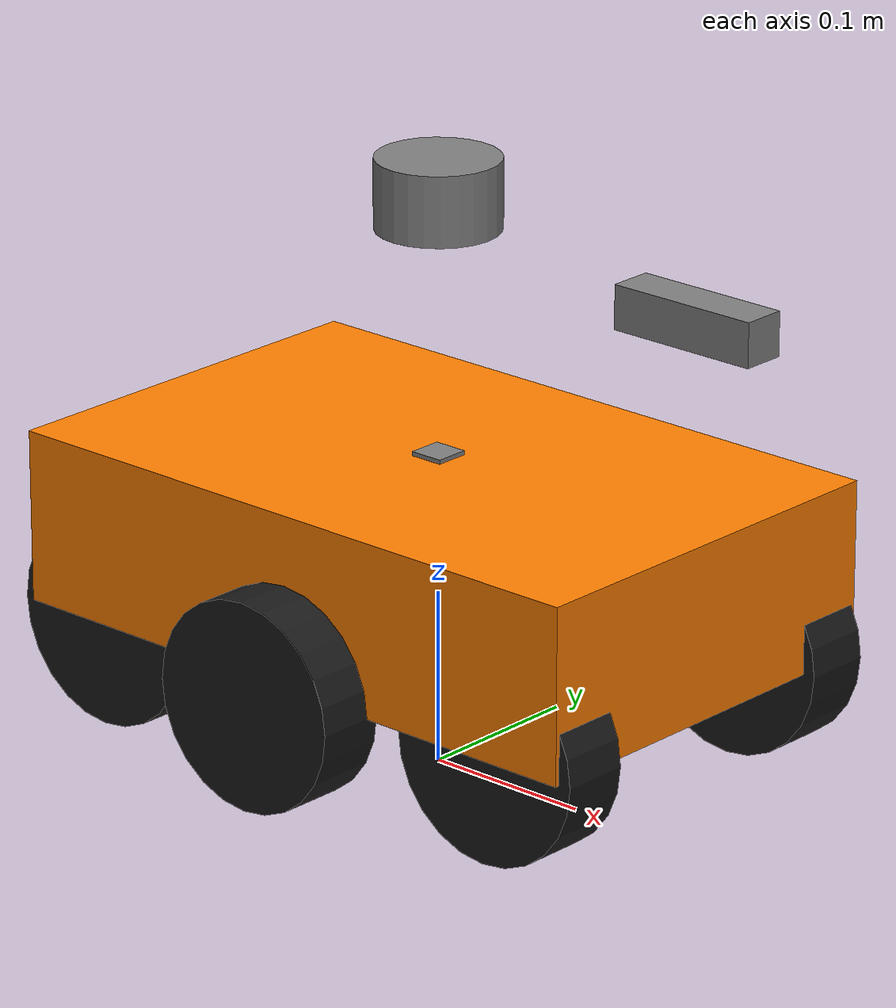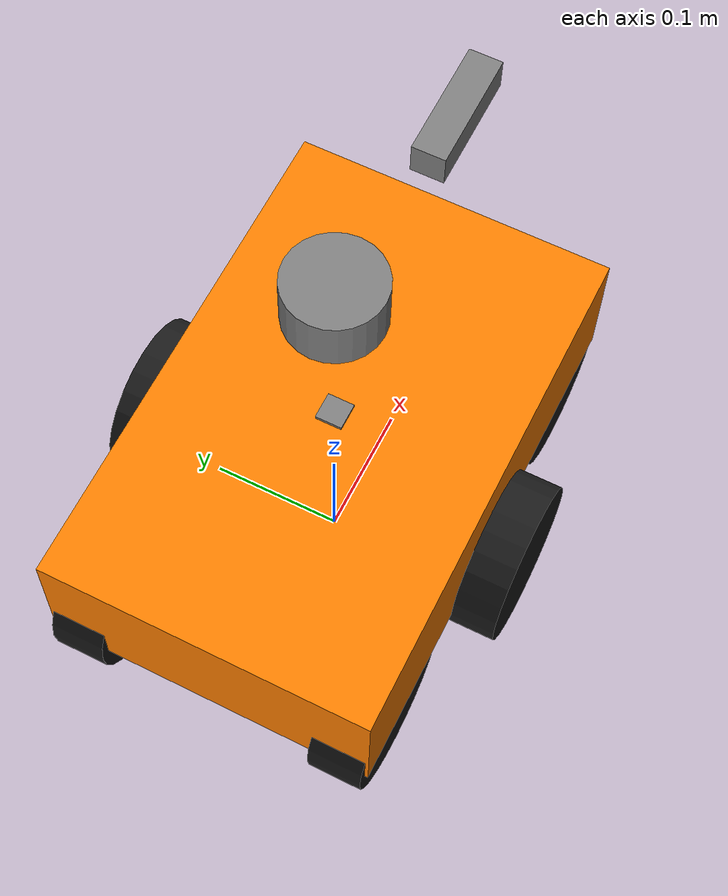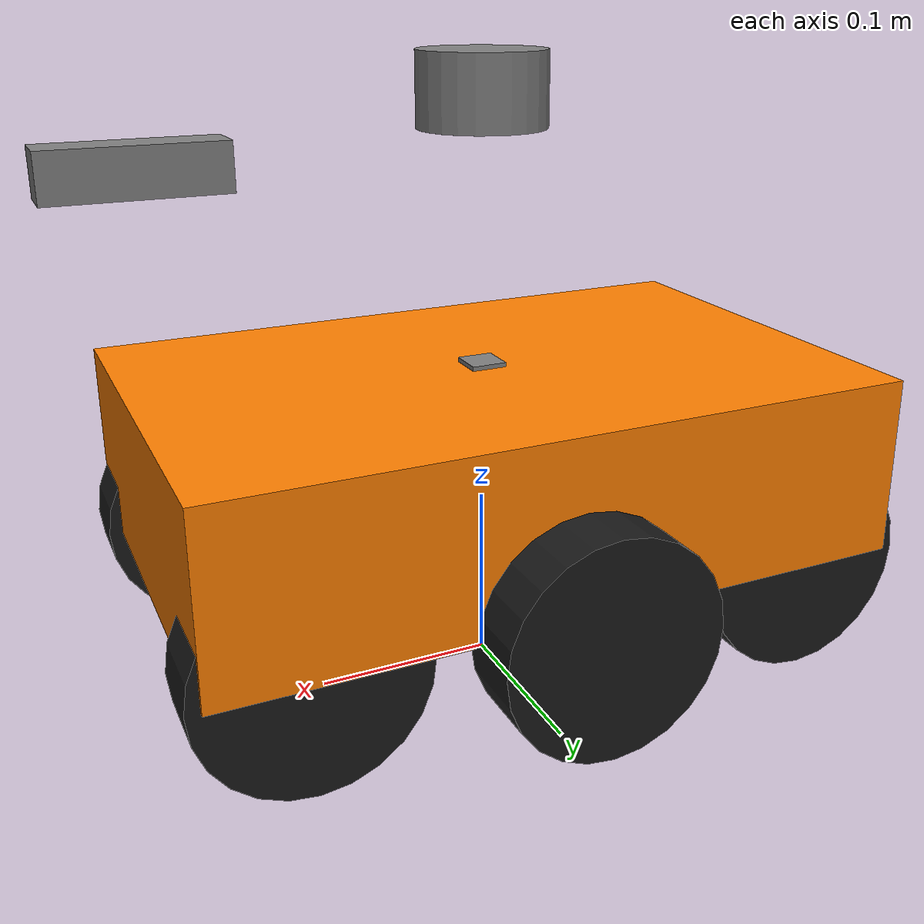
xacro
<?xml version="1.0"?>
<robot xmlns:xacro="http://www.ros.org/wiki/xacro" name="sawppy">

  <!-- ====================== PROPERTIES ====================== -->

  <!-- Chassis dimensions -->
  <xacro:property name="body_length" value="0.385"/>
  <xacro:property name="body_width" value="0.245"/>
  <xacro:property name="body_height" value="0.10"/>

  <!-- Wheel parameters (from wheel_parameter.h) -->
  <xacro:property name="wheelbase_front" value="0.14"/>
  <xacro:property name="wheelbase_back" value="0.14"/>
  <xacro:property name="track_front" value="0.20"/>
  <xacro:property name="track_mid" value="0.27"/>
  <xacro:property name="track_back" value="0.20"/>

  <!-- Wheel dimensions -->
  <xacro:property name="wheel_radius" value="0.060"/>
  <xacro:property name="wheel_width" value="0.040"/>

  <!-- Ground clearance -->
  <xacro:property name="ground_clearance" value="0.08"/>

  <!-- Sensor positions -->
  <xacro:property name="lidar_height" value="0.15"/>
  <xacro:property name="camera_height" value="0.12"/>
  <xacro:property name="camera_forward" value="0.18"/>

  <!-- Colors -->
  <material name="orange">
    <color rgba="1.0 0.5 0.0 1.0"/>
  </material>
  <material name="black">
    <color rgba="0.1 0.1 0.1 1.0"/>
  </material>
  <material name="grey">
    <color rgba="0.5 0.5 0.5 1.0"/>
  </material>
  <material name="silver">
    <color rgba="0.7 0.7 0.7 1.0"/>
  </material>

  <!-- ====================== MACROS ====================== -->

  <!-- Wheel macro -->
  <xacro:macro name="wheel" params="name x y z">
    <link name="${name}_wheel">
      <visual>
        <geometry>
          <cylinder radius="${wheel_radius}" length="${wheel_width}"/>
        </geometry>
        <origin xyz="0 0 0" rpy="${pi/2} 0 0"/>
        <material name="black"/>
      </visual>
      <collision>
        <geometry>
          <cylinder radius="${wheel_radius}" length="${wheel_width}"/>
        </geometry>
        <origin xyz="0 0 0" rpy="${pi/2} 0 0"/>
      </collision>
      <inertial>
        <mass value="0.2"/>
        <inertia ixx="0.0002" ixy="0" ixz="0" iyy="0.0004" iyz="0" izz="0.0002"/>
      </inertial>
    </link>

    <joint name="${name}_wheel_joint" type="continuous">
      <parent link="${name}_steer"/>
      <child link="${name}_wheel"/>
      <origin xyz="0 0 0" rpy="0 0 0"/>
      <axis xyz="0 1 0"/>
      <limit effort="5" velocity="10"/>
    </joint>
  </xacro:macro>

  <!-- Steering knuckle macro (for corner wheels) -->
  <xacro:macro name="steer_knuckle" params="name x y z">
    <link name="${name}_steer">
      <visual>
        <geometry>
          <box size="0.03 0.03 0.04"/>
        </geometry>
        <material name="silver"/>
      </visual>
      <collision>
        <geometry>
          <box size="0.03 0.03 0.04"/>
        </geometry>
      </collision>
      <inertial>
        <mass value="0.05"/>
        <inertia ixx="0.00001" ixy="0" ixz="0" iyy="0.00001" iyz="0" izz="0.00001"/>
      </inertial>
    </link>

    <joint name="${name}_steer_joint" type="revolute">
      <parent link="base_link"/>
      <child link="${name}_steer"/>
      <origin xyz="${x} ${y} ${z}" rpy="0 0 0"/>
      <axis xyz="0 0 1"/>
      <limit lower="${-pi/3}" upper="${pi/3}" effort="5" velocity="2"/>
    </joint>
  </xacro:macro>

  <!-- Fixed knuckle macro (for mid wheels) -->
  <xacro:macro name="fixed_knuckle" params="name x y z">
    <link name="${name}_steer">
      <visual>
        <geometry>
          <box size="0.03 0.03 0.04"/>
        </geometry>
        <material name="silver"/>
      </visual>
      <inertial>
        <mass value="0.05"/>
        <inertia ixx="0.00001" ixy="0" ixz="0" iyy="0.00001" iyz="0" izz="0.00001"/>
      </inertial>
    </link>

    <joint name="${name}_steer_joint" type="fixed">
      <parent link="base_link"/>
      <child link="${name}_steer"/>
      <origin xyz="${x} ${y} ${z}" rpy="0 0 0"/>
    </joint>
  </xacro:macro>

  <!-- ====================== LINKS ====================== -->

  <!-- Base footprint (ground projection) -->
  <link name="base_footprint"/>

  <!-- Base link (main chassis) -->
  <link name="base_link">
    <visual>
      <geometry>
        <box size="${body_length} ${body_width} ${body_height}"/>
      </geometry>
      <origin xyz="0 0 0"/>
      <material name="orange"/>
    </visual>
    <collision>
      <geometry>
        <box size="${body_length} ${body_width} ${body_height}"/>
      </geometry>
      <origin xyz="0 0 0"/>
    </collision>
    <inertial>
      <mass value="3.0"/>
      <inertia ixx="0.02" ixy="0" ixz="0" iyy="0.04" iyz="0" izz="0.05"/>
    </inertial>
  </link>

  <joint name="base_footprint_joint" type="fixed">
    <parent link="base_footprint"/>
    <child link="base_link"/>
    <origin xyz="0 0 ${ground_clearance + body_height/2}" rpy="0 0 0"/>
  </joint>

  <!-- ====================== WHEELS ====================== -->

  <!-- Front Left -->
  <xacro:steer_knuckle name="front_left"
    x="${wheelbase_front}"
    y="${track_front/2}"
    z="${-body_height/2}"/>
  <xacro:wheel name="front_left"
    x="${wheelbase_front}"
    y="${track_front/2}"
    z="${-body_height/2}"/>

  <!-- Front Right -->
  <xacro:steer_knuckle name="front_right"
    x="${wheelbase_front}"
    y="${-track_front/2}"
    z="${-body_height/2}"/>
  <xacro:wheel name="front_right"
    x="${wheelbase_front}"
    y="${-track_front/2}"
    z="${-body_height/2}"/>

  <!-- Mid Left (fixed steering) -->
  <xacro:fixed_knuckle name="mid_left"
    x="0"
    y="${track_mid/2}"
    z="${-body_height/2}"/>
  <xacro:wheel name="mid_left"
    x="0"
    y="${track_mid/2}"
    z="${-body_height/2}"/>

  <!-- Mid Right (fixed steering) -->
  <xacro:fixed_knuckle name="mid_right"
    x="0"
    y="${-track_mid/2}"
    z="${-body_height/2}"/>
  <xacro:wheel name="mid_right"
    x="0"
    y="${-track_mid/2}"
    z="${-body_height/2}"/>

  <!-- Rear Left -->
  <xacro:steer_knuckle name="rear_left"
    x="${-wheelbase_back}"
    y="${track_back/2}"
    z="${-body_height/2}"/>
  <xacro:wheel name="rear_left"
    x="${-wheelbase_back}"
    y="${track_back/2}"
    z="${-body_height/2}"/>

  <!-- Rear Right -->
  <xacro:steer_knuckle name="rear_right"
    x="${-wheelbase_back}"
    y="${-track_back/2}"
    z="${-body_height/2}"/>
  <xacro:wheel name="rear_right"
    x="${-wheelbase_back}"
    y="${-track_back/2}"
    z="${-body_height/2}"/>

  <!-- ====================== SENSORS ====================== -->

  <!-- Lidar mount -->
  <link name="lidar_link">
    <visual>
      <geometry>
        <cylinder radius="0.035" length="0.04"/>
      </geometry>
      <material name="grey"/>
    </visual>
    <collision>
      <geometry>
        <cylinder radius="0.035" length="0.04"/>
      </geometry>
    </collision>
    <inertial>
      <mass value="0.2"/>
      <inertia ixx="0.0001" ixy="0" ixz="0" iyy="0.0001" iyz="0" izz="0.0001"/>
    </inertial>
  </link>

  <joint name="lidar_joint" type="fixed">
    <parent link="base_link"/>
    <child link="lidar_link"/>
    <origin xyz="0 0 ${body_height/2 + lidar_height}" rpy="0 0 0"/>
  </joint>

  <!-- Camera mount -->
  <link name="camera_link">
    <visual>
      <geometry>
        <box size="0.09 0.025 0.025"/>
      </geometry>
      <material name="grey"/>
    </visual>
    <collision>
      <geometry>
        <box size="0.09 0.025 0.025"/>
      </geometry>
    </collision>
    <inertial>
      <mass value="0.15"/>
      <inertia ixx="0.00005" ixy="0" ixz="0" iyy="0.00005" iyz="0" izz="0.00005"/>
    </inertial>
  </link>

  <joint name="camera_joint" type="fixed">
    <parent link="base_link"/>
    <child link="camera_link"/>
    <origin xyz="${camera_forward} 0 ${body_height/2 + camera_height}" rpy="0 0 0"/>
  </joint>

  <!-- Camera optical frame (Z forward, X right, Y down) -->
  <link name="camera_optical_frame"/>

  <joint name="camera_optical_joint" type="fixed">
    <parent link="camera_link"/>
    <child link="camera_optical_frame"/>
    <origin xyz="0 0 0" rpy="${-pi/2} 0 ${-pi/2}"/>
  </joint>

  <!-- IMU -->
  <link name="imu_link">
    <visual>
      <geometry>
        <box size="0.02 0.02 0.005"/>
      </geometry>
      <material name="grey"/>
    </visual>
    <inertial>
      <mass value="0.01"/>
      <inertia ixx="0.000001" ixy="0" ixz="0" iyy="0.000001" iyz="0" izz="0.000001"/>
    </inertial>
  </link>

  <joint name="imu_joint" type="fixed">
    <parent link="base_link"/>
    <child link="imu_link"/>
    <origin xyz="0 0 ${body_height/2}" rpy="0 0 0"/>
  </joint>

</robot>
